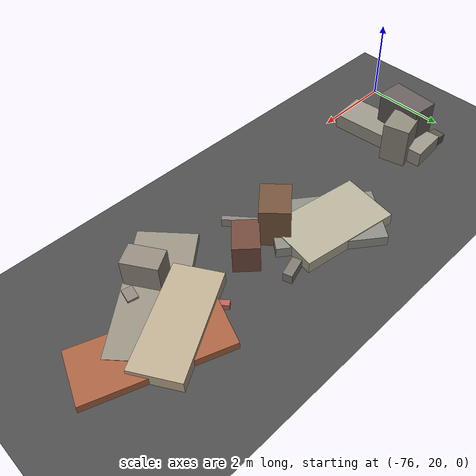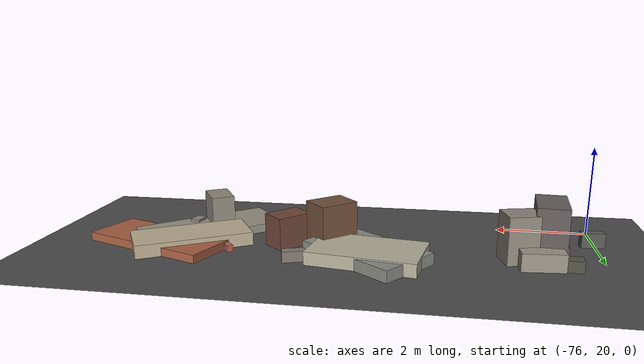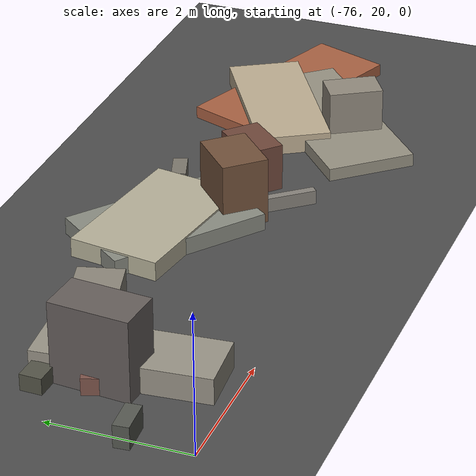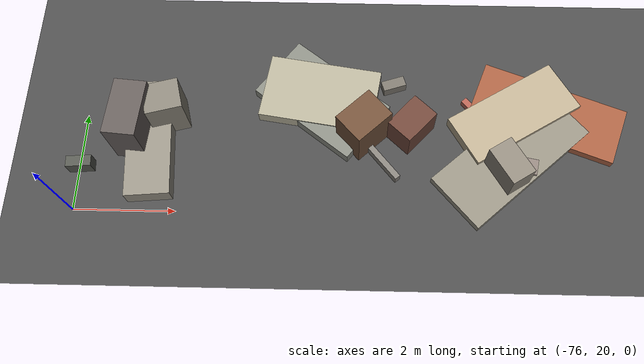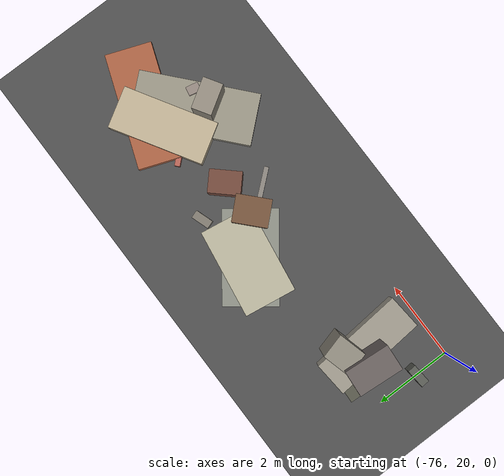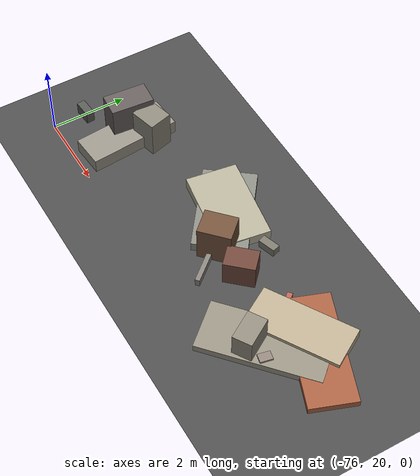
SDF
<sdf version="1.6">
 <world name="navitas_arena">
  <model name="ground_plane">
   <static>true</static>
   <link name="link">
    <collision name="collision">
     <geometry><plane><normal>0 0 1</normal><size>400 400</size></plane></geometry>
     <surface><friction><ode><mu>0.800</mu><mu2>0.800</mu2></ode></friction></surface>
    </collision>
    <visual name="visual">
     <cast_shadows>false</cast_shadows>
     <geometry><plane><normal>0 0 1</normal><size>400 400</size></plane></geometry>
     <material>
      <specular>0.04 0.04 0.04 1</specular>
      <script>
       <uri>file://media/materials/scripts/navitas_asphalt.material</uri>
       <name>Navitas/RealArenaAsphalt</name>
      </script>
     </material>
    </visual>
   </link>
  </model>
  <model name="deb_kolay_18">
   <static>true</static>
   <pose>-75.256 21.606 0.000 0 0 0</pose>
   <link name="link">
    <collision name="col_0">
     <pose>0.338 0.081 0.591 0.000 0.000 1.487</pose>
     <geometry><box><size>1.135 0.640 1.182</size></box></geometry>
    </collision>
    <visual name="vis_0">
     <pose>0.338 0.081 0.591 0.000 0.000 1.487</pose>
     <geometry><box><size>1.135 0.640 1.182</size></box></geometry>
     <material>
      <ambient>0.37 0.34 0.33 1</ambient>
      <diffuse>0.40 0.37 0.36 1</diffuse>
      <specular>0.05 0.05 0.045 1</specular>
     </material>
    </visual>
    <collision name="col_1">
     <pose>0.648 -0.183 0.190 0.000 0.000 1.654</pose>
     <geometry><box><size>2.431 0.883 0.379</size></box></geometry>
    </collision>
    <visual name="vis_1">
     <pose>0.648 -0.183 0.190 0.000 0.000 1.654</pose>
     <geometry><box><size>2.431 0.883 0.379</size></box></geometry>
     <material>
      <ambient>0.55 0.54 0.49 1</ambient>
      <diffuse>0.60 0.58 0.53 1</diffuse>
      <specular>0.05 0.05 0.045 1</specular>
     </material>
    </visual>
    <collision name="col_2">
     <pose>-0.056 0.794 0.120 0.000 0.000 -0.043</pose>
     <geometry><box><size>0.349 0.313 0.240</size></box></geometry>
    </collision>
    <visual name="vis_2">
     <pose>-0.056 0.794 0.120 0.000 0.000 -0.043</pose>
     <geometry><box><size>0.349 0.313 0.240</size></box></geometry>
     <material>
      <ambient>0.30 0.31 0.26 1</ambient>
      <diffuse>0.33 0.33 0.28 1</diffuse>
      <specular>0.05 0.05 0.045 1</specular>
     </material>
    </visual>
    <collision name="col_3">
     <pose>0.211 0.154 0.126 0.000 0.000 0.332</pose>
     <geometry><box><size>0.501 0.266 0.251</size></box></geometry>
    </collision>
    <visual name="vis_3">
     <pose>0.211 0.154 0.126 0.000 0.000 0.332</pose>
     <geometry><box><size>0.501 0.266 0.251</size></box></geometry>
     <material>
      <ambient>0.46 0.31 0.26 1</ambient>
      <diffuse>0.49 0.33 0.29 1</diffuse>
      <specular>0.05 0.05 0.045 1</specular>
     </material>
    </visual>
    <collision name="col_4">
     <pose>-0.684 -0.710 0.164 0.000 0.000 0.074</pose>
     <geometry><box><size>0.493 0.220 0.328</size></box></geometry>
    </collision>
    <visual name="vis_4">
     <pose>-0.684 -0.710 0.164 0.000 0.000 0.074</pose>
     <geometry><box><size>0.493 0.220 0.328</size></box></geometry>
     <material>
      <ambient>0.31 0.32 0.29 1</ambient>
      <diffuse>0.34 0.35 0.32 1</diffuse>
      <specular>0.05 0.05 0.045 1</specular>
     </material>
    </visual>
    <collision name="col_5">
     <pose>0.964 0.401 0.505 0.000 0.000 0.261</pose>
     <geometry><box><size>0.717 0.629 1.011</size></box></geometry>
    </collision>
    <visual name="vis_5">
     <pose>0.964 0.401 0.505 0.000 0.000 0.261</pose>
     <geometry><box><size>0.717 0.629 1.011</size></box></geometry>
     <material>
      <ambient>0.51 0.49 0.45 1</ambient>
      <diffuse>0.55 0.53 0.48 1</diffuse>
      <specular>0.05 0.05 0.045 1</specular>
     </material>
    </visual>
   </link>
  </model>
  <model name="deb_kolay_110">
   <static>true</static>
   <pose>-70.333 21.930 0.000 0 0 0</pose>
   <link name="link">
    <collision name="col_0">
     <pose>-0.876 0.455 0.127 0.000 0.000 2.496</pose>
     <geometry><box><size>2.398 1.406 0.255</size></box></geometry>
    </collision>
    <visual name="vis_0">
     <pose>-0.876 0.455 0.127 0.000 0.000 2.496</pose>
     <geometry><box><size>2.398 1.406 0.255</size></box></geometry>
     <material>
      <ambient>0.50 0.51 0.47 1</ambient>
      <diffuse>0.54 0.55 0.51 1</diffuse>
      <specular>0.05 0.05 0.045 1</specular>
     </material>
    </visual>
    <collision name="col_1">
     <pose>-0.914 0.561 0.142 0.000 0.000 2.991</pose>
     <geometry><box><size>2.305 1.356 0.284</size></box></geometry>
    </collision>
    <visual name="vis_1">
     <pose>-0.914 0.561 0.142 0.000 0.000 2.991</pose>
     <geometry><box><size>2.305 1.356 0.284</size></box></geometry>
     <material>
      <ambient>0.66 0.64 0.55 1</ambient>
      <diffuse>0.71 0.69 0.60 1</diffuse>
      <specular>0.05 0.05 0.045 1</specular>
     </material>
    </visual>
    <collision name="col_2">
     <pose>0.583 0.839 0.116 0.000 0.000 3.461</pose>
     <geometry><box><size>0.476 0.214 0.231</size></box></geometry>
    </collision>
    <visual name="vis_2">
     <pose>0.583 0.839 0.116 0.000 0.000 3.461</pose>
     <geometry><box><size>0.476 0.214 0.231</size></box></geometry>
     <material>
      <ambient>0.46 0.44 0.40 1</ambient>
      <diffuse>0.49 0.47 0.43 1</diffuse>
      <specular>0.05 0.05 0.045 1</specular>
     </material>
    </visual>
    <collision name="col_3">
     <pose>-0.025 -0.245 0.495 0.000 0.000 2.321</pose>
     <geometry><box><size>0.680 0.865 0.991</size></box></geometry>
    </collision>
    <visual name="vis_3">
     <pose>-0.025 -0.245 0.495 0.000 0.000 2.321</pose>
     <geometry><box><size>0.680 0.865 0.991</size></box></geometry>
     <material>
      <ambient>0.42 0.30 0.21 1</ambient>
      <diffuse>0.45 0.32 0.23 1</diffuse>
      <specular>0.05 0.05 0.045 1</specular>
     </material>
    </visual>
    <collision name="col_4">
     <pose>-0.101 -0.310 0.105 0.000 0.000 2.272</pose>
     <geometry><box><size>2.359 0.121 0.211</size></box></geometry>
    </collision>
    <visual name="vis_4">
     <pose>-0.101 -0.310 0.105 0.000 0.000 2.272</pose>
     <geometry><box><size>2.359 0.121 0.211</size></box></geometry>
     <material>
      <ambient>0.49 0.48 0.44 1</ambient>
      <diffuse>0.53 0.51 0.48 1</diffuse>
      <specular>0.05 0.05 0.045 1</specular>
     </material>
    </visual>
    <collision name="col_5">
     <pose>0.923 -0.154 0.353 0.000 0.000 3.971</pose>
     <geometry><box><size>0.801 0.580 0.707</size></box></geometry>
    </collision>
    <visual name="vis_5">
     <pose>0.923 -0.154 0.353 0.000 0.000 3.971</pose>
     <geometry><box><size>0.801 0.580 0.707</size></box></geometry>
     <material>
      <ambient>0.41 0.26 0.21 1</ambient>
      <diffuse>0.44 0.28 0.23 1</diffuse>
      <specular>0.05 0.05 0.045 1</specular>
     </material>
    </visual>
    <collision name="col_6">
     <pose>-0.929 0.289 0.076 0.000 0.000 2.371</pose>
     <geometry><box><size>1.911 0.280 0.152</size></box></geometry>
    </collision>
    <visual name="vis_6">
     <pose>-0.929 0.289 0.076 0.000 0.000 2.371</pose>
     <geometry><box><size>1.911 0.280 0.152</size></box></geometry>
     <material>
      <ambient>0.41 0.27 0.20 1</ambient>
      <diffuse>0.44 0.29 0.22 1</diffuse>
      <specular>0.05 0.05 0.045 1</specular>
     </material>
    </visual>
   </link>
  </model>
  <model name="deb_kolay_137">
   <static>true</static>
   <pose>-67.273 21.786 0.000 0 0 0</pose>
   <link name="link">
    <collision name="col_0">
     <pose>-0.266 -0.910 0.417 0.000 0.000 3.698</pose>
     <geometry><box><size>0.513 0.802 0.834</size></box></geometry>
    </collision>
    <visual name="vis_0">
     <pose>-0.266 -0.910 0.417 0.000 0.000 3.698</pose>
     <geometry><box><size>0.513 0.802 0.834</size></box></geometry>
     <material>
      <ambient>0.53 0.50 0.46 1</ambient>
      <diffuse>0.57 0.54 0.49 1</diffuse>
      <specular>0.05 0.05 0.045 1</specular>
     </material>
    </visual>
    <collision name="col_1">
     <pose>0.237 -0.796 0.123 0.000 0.000 2.939</pose>
     <geometry><box><size>0.233 0.323 0.247</size></box></geometry>
    </collision>
    <visual name="vis_1">
     <pose>0.237 -0.796 0.123 0.000 0.000 2.939</pose>
     <geometry><box><size>0.233 0.323 0.247</size></box></geometry>
     <material>
      <ambient>0.53 0.48 0.46 1</ambient>
      <diffuse>0.57 0.52 0.49 1</diffuse>
      <specular>0.05 0.05 0.045 1</specular>
     </material>
    </visual>
    <collision name="col_2">
     <pose>-0.148 -0.544 0.096 0.000 0.000 3.864</pose>
     <geometry><box><size>3.095 1.327 0.192</size></box></geometry>
    </collision>
    <visual name="vis_2">
     <pose>-0.148 -0.544 0.096 0.000 0.000 3.864</pose>
     <geometry><box><size>3.095 1.327 0.192</size></box></geometry>
     <material>
      <ambient>0.55 0.53 0.47 1</ambient>
      <diffuse>0.59 0.57 0.51 1</diffuse>
      <specular>0.05 0.05 0.045 1</specular>
     </material>
    </visual>
    <collision name="col_3">
     <pose>-0.041 0.346 0.143 0.000 0.000 3.684</pose>
     <geometry><box><size>2.487 1.099 0.287</size></box></geometry>
    </collision>
    <visual name="vis_3">
     <pose>-0.041 0.346 0.143 0.000 0.000 3.684</pose>
     <geometry><box><size>2.487 1.099 0.287</size></box></geometry>
     <material>
      <ambient>0.69 0.63 0.53 1</ambient>
      <diffuse>0.74 0.68 0.57 1</diffuse>
      <specular>0.05 0.05 0.045 1</specular>
     </material>
    </visual>
    <collision name="col_4">
     <pose>-0.479 0.063 0.069 0.000 0.000 2.298</pose>
     <geometry><box><size>1.668 0.136 0.138</size></box></geometry>
    </collision>
    <visual name="vis_4">
     <pose>-0.479 0.063 0.069 0.000 0.000 2.298</pose>
     <geometry><box><size>1.668 0.136 0.138</size></box></geometry>
     <material>
      <ambient>0.66 0.37 0.30 1</ambient>
      <diffuse>0.71 0.39 0.33 1</diffuse>
      <specular>0.05 0.05 0.045 1</specular>
     </material>
    </visual>
    <collision name="col_5">
     <pose>0.302 -0.048 0.093 0.000 0.000 1.492</pose>
     <geometry><box><size>0.421 0.188 0.185</size></box></geometry>
    </collision>
    <visual name="vis_5">
     <pose>0.302 -0.048 0.093 0.000 0.000 1.492</pose>
     <geometry><box><size>0.421 0.188 0.185</size></box></geometry>
     <material>
      <ambient>0.65 0.40 0.29 1</ambient>
      <diffuse>0.70 0.43 0.31 1</diffuse>
      <specular>0.05 0.05 0.045 1</specular>
     </material>
    </visual>
    <collision name="col_6">
     <pose>0.656 0.409 0.092 0.000 0.000 2.786</pose>
     <geometry><box><size>2.999 1.207 0.183</size></box></geometry>
    </collision>
    <visual name="vis_6">
     <pose>0.656 0.409 0.092 0.000 0.000 2.786</pose>
     <geometry><box><size>2.999 1.207 0.183</size></box></geometry>
     <material>
      <ambient>0.61 0.35 0.24 1</ambient>
      <diffuse>0.66 0.38 0.26 1</diffuse>
      <specular>0.05 0.05 0.045 1</specular>
     </material>
    </visual>
   </link>
  </model>
 </world>
</sdf>
